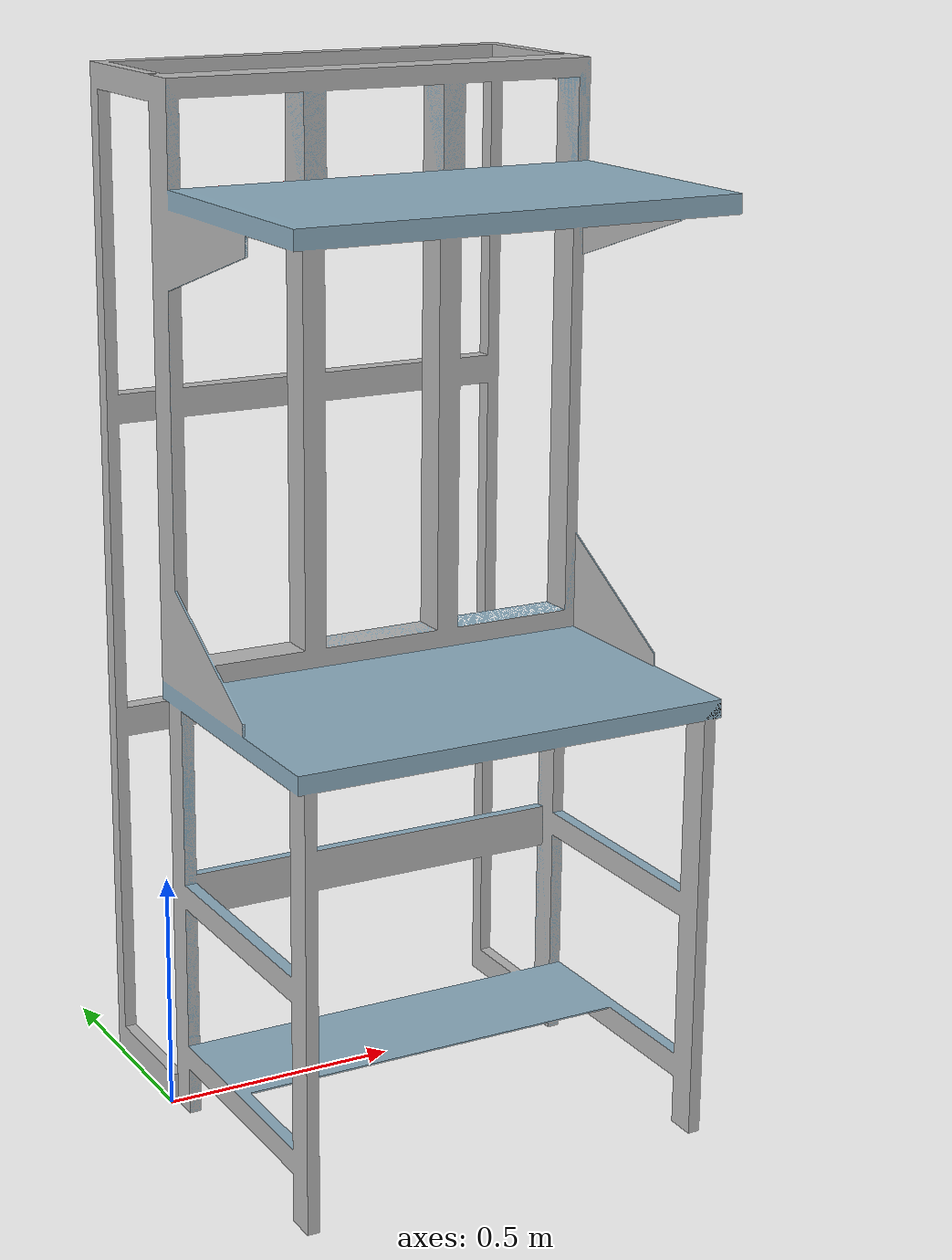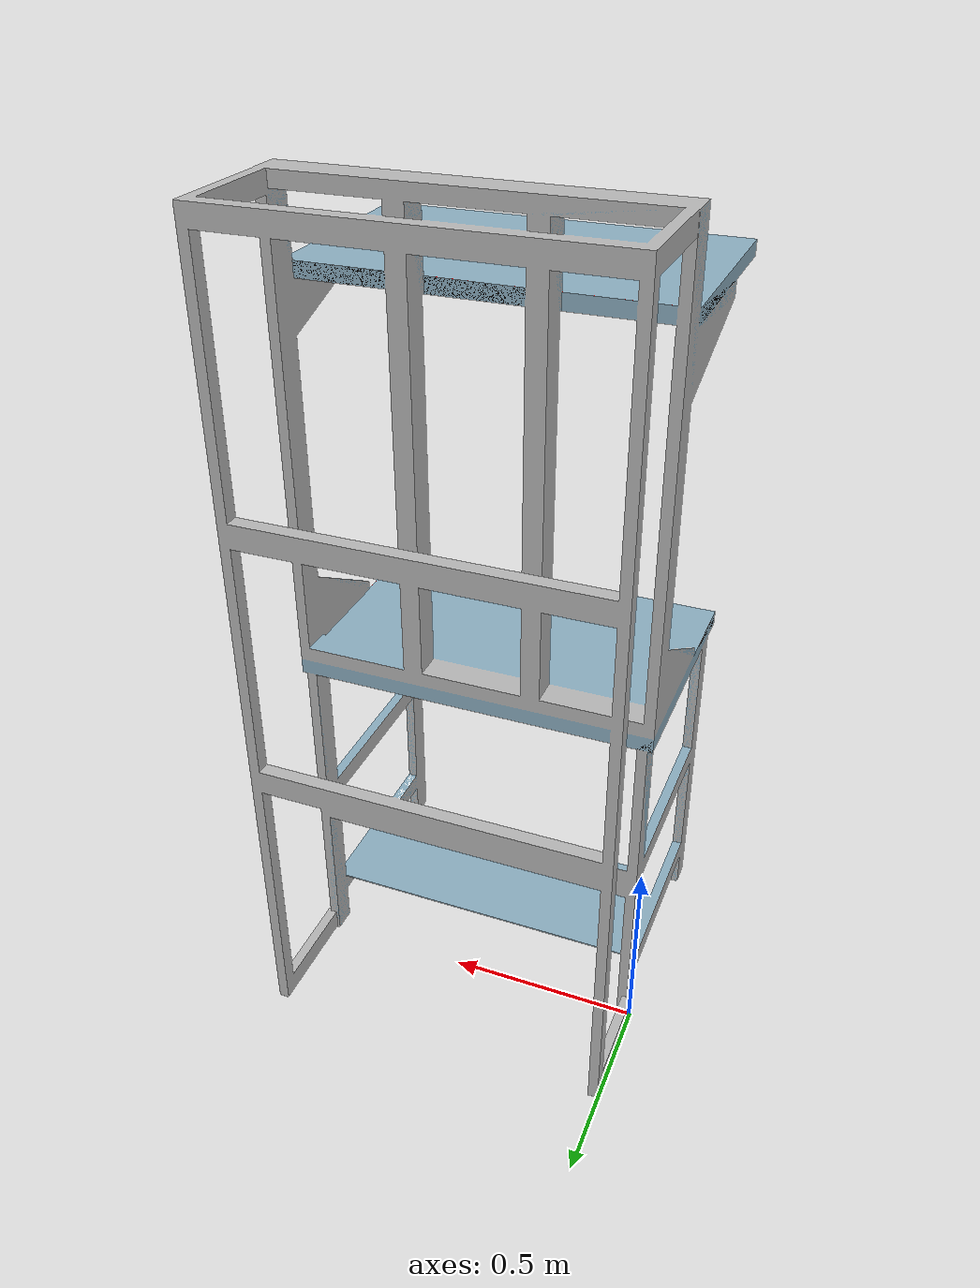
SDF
<?xml version="1.0" ?>
<sdf version="1.6">
  <model name="assemblybench">
    <static>true</static>
    <link name="link">
      <collision name="collision">
        <geometry>
          <mesh>
            <scale>0.5 0.8 1</scale>
            <uri>model://assemblybench/meshes/assemblybench2.dae</uri>
          </mesh>
        </geometry>
      </collision>
      <visual name="visual">
        <geometry>
          <mesh>
            <scale>0.5 0.8 1</scale>
            <uri>model://assemblybench/meshes/assemblybench2.dae</uri>
          </mesh>
        </geometry>
       <material>
         <script>
           <uri>model://assemblybench/materials/scripts</uri>
           <uri>model://assemblybench/materials/textures</uri>
           <name>AssemblyBench/Diffuse</name>
         </script>
       </material>
      </visual>
    </link>
  </model>
</sdf>
